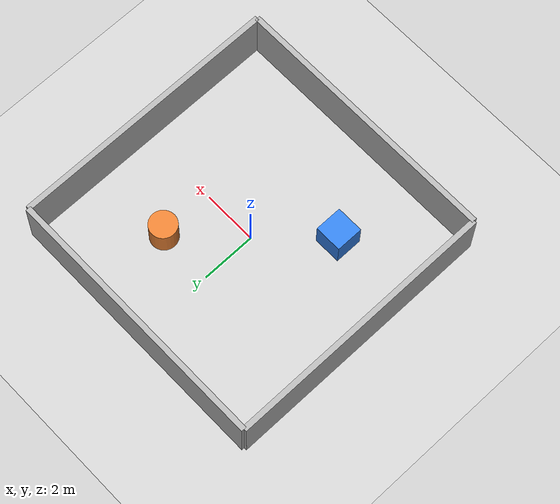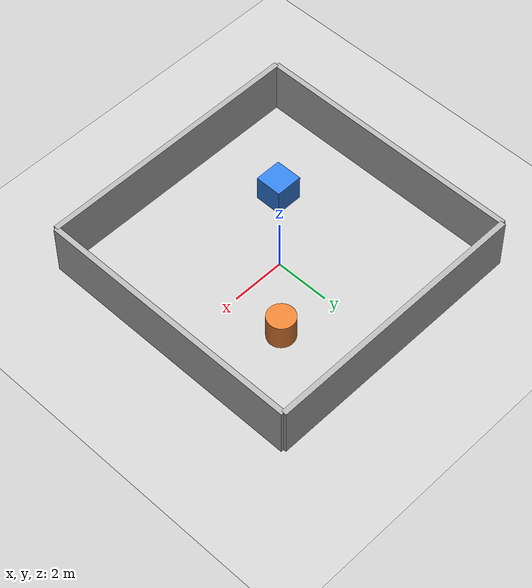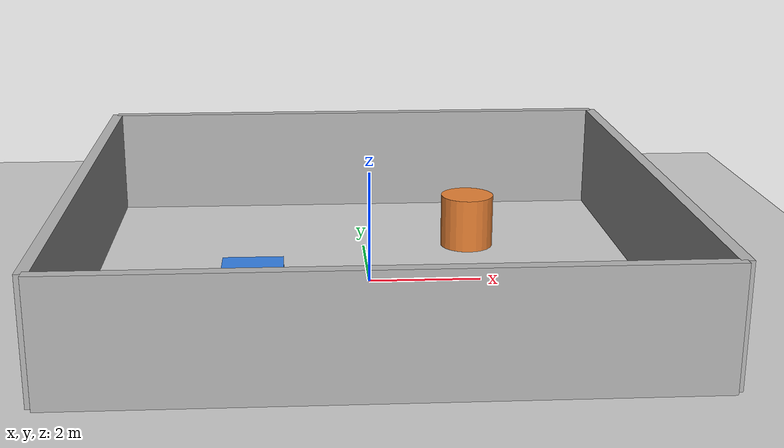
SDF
<?xml version="1.0" ?>
<sdf version="1.8">
  <world name="turtlebot3_world">
    <physics name="1ms" type="ignored">
      <max_step_size>0.001</max_step_size>
      <real_time_factor>1.0</real_time_factor>
    </physics>

    <plugin
      filename="gz-sim-physics-system"
      name="gz::sim::systems::Physics">
    </plugin>

    <plugin
      filename="gz-sim-user-commands-system"
      name="gz::sim::systems::UserCommands">
    </plugin>

    <plugin
      filename="gz-sim-scene-broadcaster-system"
      name="gz::sim::systems::SceneBroadcaster">
    </plugin>

    <plugin
      filename="gz-sim-contact-system"
      name="gz::sim::systems::Contact">
    </plugin>

    <plugin
      filename="gz-sim-imu-system"
      name="gz::sim::systems::Imu">
    </plugin>

    <plugin
      filename="gz-sim-sensors-system"
      name="gz::sim::systems::Sensors">
      <render_engine>ogre2</render_engine>
    </plugin>

    <gui fullscreen="0">
      <plugin filename="MinimalScene" name="3D View">
        <gz-gui>
          <title>3D View</title>
          <property type="bool" key="showTitleBar">false</property>
          <property type="string" key="state">docked</property>
        </gz-gui>
        <engine>ogre2</engine>
        <scene>scene</scene>
        <ambient_light>0.4 0.4 0.4</ambient_light>
        <background_color>0.8 0.8 0.8</background_color>
        <camera_pose>-6 0 6 0 0.5 0</camera_pose>
      </plugin>

      <plugin filename="EntityContextMenuPlugin" name="Entity context menu">
        <gz-gui>
          <property key="state" type="string">floating</property>
          <property key="width" type="double">5</property>
          <property key="height" type="double">5</property>
          <property key="showTitleBar" type="bool">false</property>
        </gz-gui>
      </plugin>

      <plugin filename="GzSceneManager" name="Scene Manager">
        <gz-gui>
          <property key="resizable" type="bool">false</property>
          <property key="width" type="double">5</property>
          <property key="height" type="double">5</property>
          <property key="state" type="string">floating</property>
          <property key="showTitleBar" type="bool">false</property>
        </gz-gui>
      </plugin>

      <plugin filename="InteractiveViewControl" name="Interactive view control">
        <gz-gui>
          <property key="resizable" type="bool">false</property>
          <property key="width" type="double">5</property>
          <property key="height" type="double">5</property>
          <property key="state" type="string">floating</property>
          <property key="showTitleBar" type="bool">false</property>
        </gz-gui>
      </plugin>

      <plugin filename="CameraTracking" name="Camera Tracking">
        <gz-gui>
          <property key="resizable" type="bool">false</property>
          <property key="width" type="double">5</property>
          <property key="height" type="double">5</property>
          <property key="state" type="string">floating</property>
          <property key="showTitleBar" type="bool">false</property>
        </gz-gui>
      </plugin>

      <plugin filename="MarkerManager" name="Marker manager">
        <gz-gui>
          <property key="resizable" type="bool">false</property>
          <property key="width" type="double">5</property>
          <property key="height" type="double">5</property>
          <property key="state" type="string">floating</property>
          <property key="showTitleBar" type="bool">false</property>
        </gz-gui>
      </plugin>

      <plugin filename="SelectEntities" name="Select Entities">
        <gz-gui>
          <anchors target="Select entities">
            <line own="right" target="right"/>
            <line own="top" target="top"/>
          </anchors>
          <property key="resizable" type="bool">false</property>
          <property key="width" type="double">5</property>
          <property key="height" type="double">5</property>
          <property key="state" type="string">floating</property>
          <property key="showTitleBar" type="bool">false</property>
        </gz-gui>
      </plugin>

      <plugin filename="Spawn" name="Spawn Entities">
        <gz-gui>
          <anchors target="Select entities">
            <line own="right" target="right"/>
            <line own="top" target="top"/>
          </anchors>
          <property key="resizable" type="bool">false</property>
          <property key="width" type="double">5</property>
          <property key="height" type="double">5</property>
          <property key="state" type="string">floating</property>
          <property key="showTitleBar" type="bool">false</property>
        </gz-gui>
      </plugin>

      <plugin filename="VisualizationCapabilities" name="Visualization Capabilities">
        <gz-gui>
          <property key="resizable" type="bool">false</property>
          <property key="width" type="double">5</property>
          <property key="height" type="double">5</property>
          <property key="state" type="string">floating</property>
          <property key="showTitleBar" type="bool">false</property>
        </gz-gui>
      </plugin>

      <plugin filename="TransformControl" name="Transform control">
        <gz-gui>
          <property key="resizable" type="bool">false</property>
          <property key="width" type="double">5</property>
          <property key="height" type="double">5</property>
          <property key="state" type="string">floating</property>
          <property key="showTitleBar" type="bool">false</property>
        </gz-gui>
      </plugin>

      <plugin filename="Screenshot" name="Screenshot">
        <gz-gui>
          <property key="resizable" type="bool">false</property>
          <property key="width" type="double">5</property>
          <property key="height" type="double">5</property>
          <property key="state" type="string">floating</property>
          <property key="showTitleBar" type="bool">false</property>
        </gz-gui>
      </plugin>

      <plugin filename="CopyPaste" name="CopyPaste">
        <gz-gui>
          <property key="resizable" type="bool">false</property>
          <property key="width" type="double">5</property>
          <property key="height" type="double">5</property>
          <property key="state" type="string">floating</property>
          <property key="showTitleBar" type="bool">false</property>
        </gz-gui>
      </plugin>
    </gui>

    <light type="directional" name="sun">
      <cast_shadows>true</cast_shadows>
      <pose>0 0 10 0 0 0</pose>
      <diffuse>0.8 0.8 0.8 1</diffuse>
      <specular>0.2 0.2 0.2 1</specular>
      <attenuation>
        <range>1000</range>
        <constant>0.9</constant>
        <linear>0.01</linear>
        <quadratic>0.001</quadratic>
      </attenuation>
      <direction>-0.5 0.1 -0.9</direction>
    </light>

    <model name="ground_plane">
      <static>true</static>
      <link name="link">
        <collision name="collision">
          <geometry>
            <plane>
              <normal>0 0 1</normal>
              <size>100 100</size>
            </plane>
          </geometry>
        </collision>
        <visual name="visual">
          <geometry>
            <plane>
              <normal>0 0 1</normal>
              <size>100 100</size>
            </plane>
          </geometry>
          <material>
            <ambient>0.8 0.8 0.8 1</ambient>
            <diffuse>0.8 0.8 0.8 1</diffuse>
            <specular>0.8 0.8 0.8 1</specular>
          </material>
        </visual>
      </link>
    </model>

    <!-- Add some walls to make the environment more interesting -->
    <model name="wall_1">
      <static>true</static>
      <pose>5 0 1 0 0 0</pose>
      <link name="link">
        <collision name="collision">
          <geometry>
            <box>
              <size>0.2 10 2</size>
            </box>
          </geometry>
        </collision>
        <visual name="visual">
          <geometry>
            <box>
              <size>0.2 10 2</size>
            </box>
          </geometry>
          <material>
            <ambient>0.7 0.7 0.7 1</ambient>
            <diffuse>0.7 0.7 0.7 1</diffuse>
            <specular>0.7 0.7 0.7 1</specular>
          </material>
        </visual>
      </link>
    </model>

    <model name="wall_2">
      <static>true</static>
      <pose>-5 0 1 0 0 0</pose>
      <link name="link">
        <collision name="collision">
          <geometry>
            <box>
              <size>0.2 10 2</size>
            </box>
          </geometry>
        </collision>
        <visual name="visual">
          <geometry>
            <box>
              <size>0.2 10 2</size>
            </box>
          </geometry>
          <material>
            <ambient>0.7 0.7 0.7 1</ambient>
            <diffuse>0.7 0.7 0.7 1</diffuse>
            <specular>0.7 0.7 0.7 1</specular>
          </material>
        </visual>
      </link>
    </model>

    <model name="wall_3">
      <static>true</static>
      <pose>0 5 1 0 0 1.5708</pose>
      <link name="link">
        <collision name="collision">
          <geometry>
            <box>
              <size>0.2 10 2</size>
            </box>
          </geometry>
        </collision>
        <visual name="visual">
          <geometry>
            <box>
              <size>0.2 10 2</size>
            </box>
          </geometry>
          <material>
            <ambient>0.7 0.7 0.7 1</ambient>
            <diffuse>0.7 0.7 0.7 1</diffuse>
            <specular>0.7 0.7 0.7 1</specular>
          </material>
        </visual>
      </link>
    </model>

    <model name="wall_4">
      <static>true</static>
      <pose>0 -5 1 0 0 1.5708</pose>
      <link name="link">
        <collision name="collision">
          <geometry>
            <box>
              <size>0.2 10 2</size>
            </box>
          </geometry>
        </collision>
        <visual name="visual">
          <geometry>
            <box>
              <size>0.2 10 2</size>
            </box>
          </geometry>
          <material>
            <ambient>0.7 0.7 0.7 1</ambient>
            <diffuse>0.7 0.7 0.7 1</diffuse>
            <specular>0.7 0.7 0.7 1</specular>
          </material>
        </visual>
      </link>
    </model>

    <!-- Add some obstacles -->
    <model name="obstacle_1">
      <static>true</static>
      <pose>2 2 0.5 0 0 0</pose>
      <link name="link">
        <collision name="collision">
          <geometry>
            <cylinder>
              <radius>0.5</radius>
              <length>1</length>
            </cylinder>
          </geometry>
        </collision>
        <visual name="visual">
          <geometry>
            <cylinder>
              <radius>0.5</radius>
              <length>1</length>
            </cylinder>
          </geometry>
          <material>
            <ambient>0.9 0.5 0.2 1</ambient>
            <diffuse>0.9 0.5 0.2 1</diffuse>
            <specular>0.9 0.5 0.2 1</specular>
          </material>
        </visual>
      </link>
    </model>

    <model name="obstacle_2">
      <static>true</static>
      <pose>-2 -2 0.5 0 0 0</pose>
      <link name="link">
        <collision name="collision">
          <geometry>
            <box>
              <size>1 1 1</size>
            </box>
          </geometry>
        </collision>
        <visual name="visual">
          <geometry>
            <box>
              <size>1 1 1</size>
            </box>
          </geometry>
          <material>
            <ambient>0.2 0.5 0.9 1</ambient>
            <diffuse>0.2 0.5 0.9 1</diffuse>
            <specular>0.2 0.5 0.9 1</specular>
          </material>
        </visual>
      </link>
    </model>

  </world>
</sdf>
